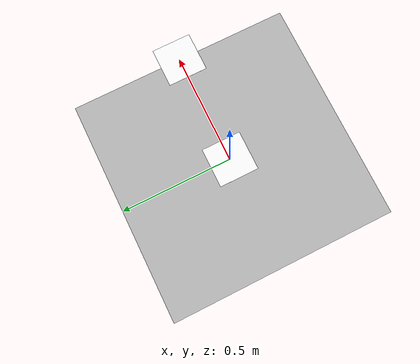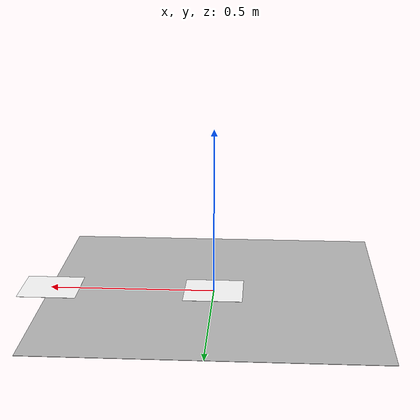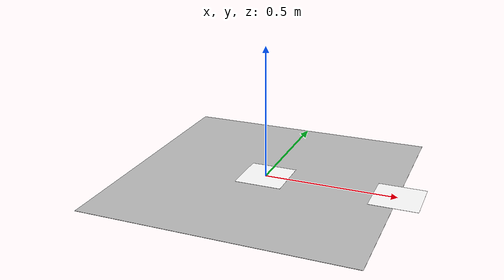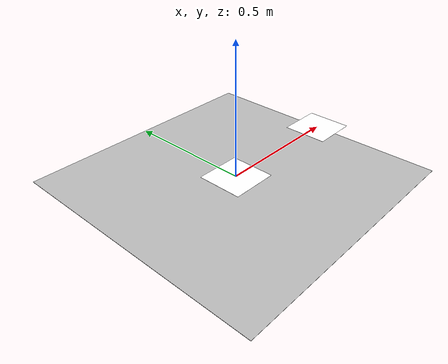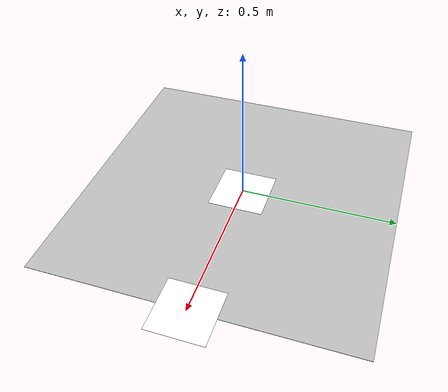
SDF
<sdf version="1.4">
 <world name="default">
  <scene><ambient>0.5 0.5 0.5 1</ambient><background>0.5 0.5 0.5 1</background><shadows>false</shadows></scene>
  <physics type="ode">
   <gravity>0 0 -9.81</gravity>
   <ode>
    <solver><type>quick</type><iters>10</iters><sor>1.3</sor></solver>
    <constraints>
     <cfm>0.0</cfm>
     <erp>0.2</erp>
     <contact_max_correcting_vel>10</contact_max_correcting_vel>
     <contact_surface_layer>0.001</contact_surface_layer>
    </constraints>
   </ode>
   <real_time_update_rate>1000</real_time_update_rate>
   <max_step_size>0.001</max_step_size>
  </physics>
  <light type="directional" name="directional_light_2">
   <pose>0 0 20 0 0 0</pose>
   <diffuse>1 1 1 1</diffuse>
   <specular>1 1 1 1</specular>
   <attenuation><range>300</range></attenuation>
   <direction>-1 1 -1</direction>
   <cast_shadows>false</cast_shadows>
  </light>
  <light type="directional" name="directional_light_3">
   <pose>0 0 20 0 0 0</pose>
   <diffuse>1 1 1 1</diffuse>
   <specular>1 1 1 1</specular>
   <attenuation><range>300</range></attenuation>
   <direction>-1 -1 -1</direction>
   <cast_shadows>false</cast_shadows>
  </light>
  <model name="plane1_model">
   <link name="body">
    <collision name="geom_1">
     <geometry><plane><normal>0 0 1</normal></plane></geometry>
     <surface>
      <friction>
       <ode><mu>10.0</mu><mu2>10.0</mu2><fdir1>0 0 0</fdir1><slip1>0</slip1><slip2>0</slip2></ode>
      </friction>
      <bounce><restitution_coefficient>0</restitution_coefficient><threshold>1000000.0</threshold></bounce>
      <contact>
       <ode>
        <soft_cfm>0</soft_cfm>
        <soft_erp>0.2</soft_erp>
        <kp>1e10</kp>
        <kd>1</kd>
        <max_vel>100.0</max_vel>
        <min_depth>0.0001</min_depth>
       </ode>
      </contact>
     </surface>
    </collision>
    <visual name="visual_1">
     <geometry><plane><normal>0 0 1</normal></plane></geometry>
     <material><script>Gazebo/Grey</script></material>
     <cast_shadows>false</cast_shadows>
    </visual>
   </link>
   <static>true</static>
  </model>
  <include><uri>model://tag36_11_00000</uri><pose>0 0 0.001 0 0 0</pose><name>tag36_11_00000</name></include>
  <include><uri>model://tag36_11_00001</uri><pose>0.5 0 0.001 0 0 0</pose><name>tag36_11_00001</name></include>
 </world>
</sdf>

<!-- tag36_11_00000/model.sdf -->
<sdf version='1.5'>
  <model name='tag36_11_00000'>

    <link name='tag'>
      <pose frame=''>0 0 0 0 0 0</pose>
      <visual name='visual'>
        <geometry>
          <box>
            <size>0.1778 0.1778 1e-5</size>
          </box>
        </geometry>
        <material>
          <script>
            <uri>model://tag36_11_00000/materials/scripts</uri>
            <uri>model://tag36_11_00000/materials/textures</uri>
            <name>Tag36_11_00000/Tag</name>
          </script>
          <ambient>1 1 1 1</ambient>
          <diffuse>1 1 1 1</diffuse>
          <specular>0 0 0 1</specular>
          <emissive>1 1 1 0</emissive>
          <shader type='vertex'>
            <normal_map>__default__</normal_map>
          </shader>
        </material>
        <pose frame=''>0 0 0 0 -0 0</pose>
        <cast_shadows>1</cast_shadows>
        <transparency>0</transparency>
      </visual>
      <collision name='collision'>
        <laser_retro>0</laser_retro>
        <max_contacts>10</max_contacts>
        <pose frame=''>0 0 0 0 -0 0</pose>
        <geometry>
          <box>
            <size>0.1778 0.1778 1e-05</size>
          </box>
        </geometry>
      </collision>
    </link>

    <link name='tag_pad'>
      <pose frame='tag'>0 0 -3e-4 0 -0 0</pose>
      <visual name='visual'>
        <geometry>
          <box>
            <size>0.1778 0.1778 1e-5</size>
          </box>
        </geometry>
        <material>
          <lighting>1</lighting>
          <script>
            <uri>file://media/materials/scripts/gazebo.material</uri>
            <name>Gazebo/White</name>
          </script>
          <ambient>0.3 0.3 0.3 1</ambient>
          <diffuse>0.7 0.7 0.7 1</diffuse>
          <specular>0.01 0.01 0.01 1</specular>
          <emissive>1 1 1 0</emissive>
          <shader type='vertex'>
            <normal_map>__default__</normal_map>
          </shader>
        </material>
        <cast_shadows>1</cast_shadows>
        <transparency>0</transparency>
      </visual>
      <collision name='collision'>
        <laser_retro>0</laser_retro>
        <max_contacts>10</max_contacts>
        <pose frame=''>0 0 0 0 -0 0</pose>
        <geometry>
          <box>
            <size>0.1778 0.1778 1e-5</size>
          </box>
        </geometry>
      </collision>
    </link>

    <joint name='tag_JOINT_marker_pad' type='revolute'>
      <parent>tag</parent>
      <child>tag_pad</child>
      <pose frame=''>0 0 0 0 -0 0</pose>
      <axis>
        <xyz>0 0 1</xyz>
        <limit>
          <upper>0</upper>
          <lower>0</lower>
        </limit>
      </axis>
    </joint>

    <static>1</static>
    <allow_auto_disable>1</allow_auto_disable>
  </model>
</sdf>

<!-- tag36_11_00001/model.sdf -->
<sdf version='1.5'>
  <model name='tag36_11_00001'>

    <link name='tag'>
      <pose frame=''>0 0 0 0 0 0</pose>
      <visual name='visual'>
        <geometry>
          <box>
            <size>0.1778 0.1778 1e-5</size>
          </box>
        </geometry>
        <material>
          <script>
            <uri>model://tag36_11_00001/materials/scripts</uri>
            <uri>model://tag36_11_00001/materials/textures</uri>
            <name>Tag36_11_00001/Tag</name>
          </script>
          <ambient>1 1 1 1</ambient>
          <diffuse>1 1 1 1</diffuse>
          <specular>0 0 0 1</specular>
          <emissive>1 1 1 0</emissive>
          <shader type='vertex'>
            <normal_map>__default__</normal_map>
          </shader>
        </material>
        <pose frame=''>0 0 0 0 -0 0</pose>
        <cast_shadows>1</cast_shadows>
        <transparency>0</transparency>
      </visual>
      <collision name='collision'>
        <laser_retro>0</laser_retro>
        <max_contacts>10</max_contacts>
        <pose frame=''>0 0 0 0 -0 0</pose>
        <geometry>
          <box>
            <size>0.1778 0.1778 1e-05</size>
          </box>
        </geometry>
      </collision>
    </link>

    <link name='tag_pad'>
      <pose frame='tag'>0 0 -3e-4 0 -0 0</pose>
      <visual name='visual'>
        <geometry>
          <box>
            <size>0.1778 0.1778 1e-5</size>
          </box>
        </geometry>
        <material>
          <lighting>1</lighting>
          <script>
            <uri>file://media/materials/scripts/gazebo.material</uri>
            <name>Gazebo/White</name>
          </script>
          <ambient>0.3 0.3 0.3 1</ambient>
          <diffuse>0.7 0.7 0.7 1</diffuse>
          <specular>0.01 0.01 0.01 1</specular>
          <emissive>1 1 1 0</emissive>
          <shader type='vertex'>
            <normal_map>__default__</normal_map>
          </shader>
        </material>
        <cast_shadows>1</cast_shadows>
        <transparency>0</transparency>
      </visual>
      <collision name='collision'>
        <laser_retro>0</laser_retro>
        <max_contacts>10</max_contacts>
        <pose frame=''>0 0 0 0 -0 0</pose>
        <geometry>
          <box>
            <size>0.1778 0.1778 1e-5</size>
          </box>
        </geometry>
      </collision>
    </link>

    <joint name='tag_JOINT_marker_pad' type='revolute'>
      <parent>tag</parent>
      <child>tag_pad</child>
      <pose frame=''>0 0 0 0 -0 0</pose>
      <axis>
        <xyz>0 0 1</xyz>
        <limit>
          <upper>0</upper>
          <lower>0</lower>
        </limit>
      </axis>
    </joint>

    <static>1</static>
    <allow_auto_disable>1</allow_auto_disable>
  </model>
</sdf>
